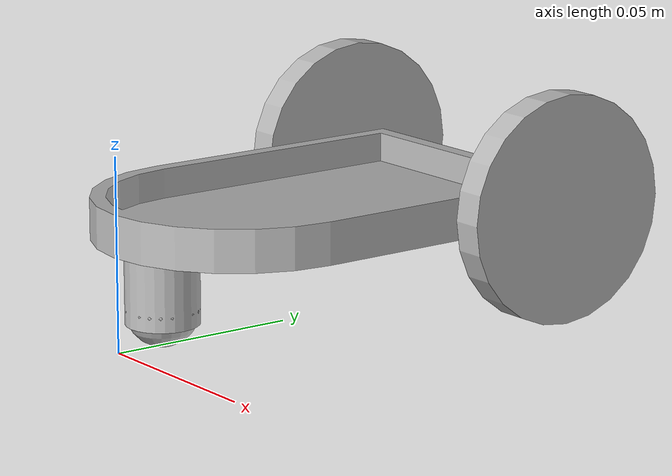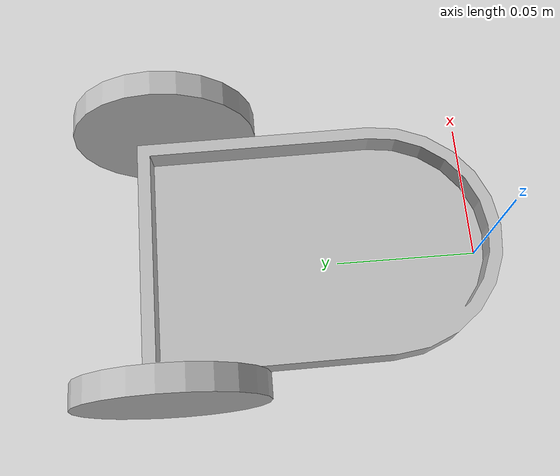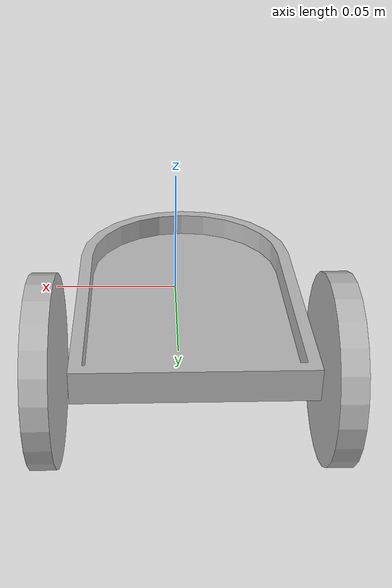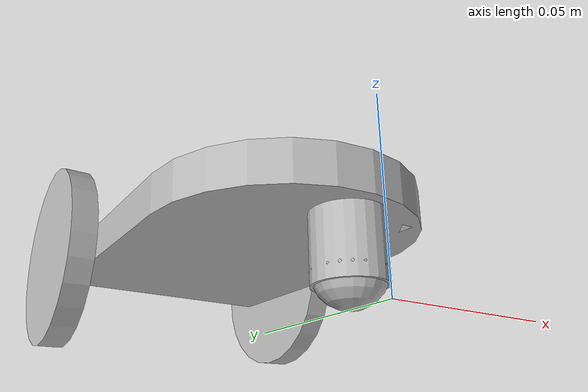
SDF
<?xml version='1.0'?>
<sdf version='1.4'>
  <model name="diff_drive_base">
    <static>false</static>
    <link name='chassis'>
    <pose>0 0 0.0243 0 0 0</pose>
           <collision name='collision'>
             <pose>-0.0025 0.05715 0.0055 0 0 1.5707</pose>
             <geometry>
               <box>
                 <size>0.1143 .0762 0.0111</size>
               </box>
             </geometry>
           </collision>

           <visual name='visual'>
              <geometry>
                <mesh>
                  <uri>model://diff_drive/meshes/diff_drive_base.dae</uri>
                </mesh>
              </geometry>
            </visual>

           <collision name='caster_ball'>
           <pose>0 0.0131 -0.015 0 0 0</pose>
             <geometry>
               <sphere>
               <radius>.009525</radius>
             </sphere>
           </geometry>

         </collision>

         <visual name='caster_ball_visual'>
         <pose>0 0.0131 -0.015 0 0 0</pose>
           <geometry>
             <sphere>
               <radius>.009525</radius>
             </sphere>
           </geometry>
         </visual>

         <collision name='caster_cyl'>
              <pose>0 0.0131 -0.0095375 0 0 0</pose>
              <geometry>
                   <cylinder>
                        <radius>0.009525</radius>
                        <length>0.0183</length>
                   </cylinder>
              </geometry>
         </collision>
         <visual name='caster_cyl_visual'>
              <pose>0 0.0131 -0.0095375 0 0 0</pose>
              <geometry>
                   <cylinder>
                        <radius>0.009525</radius>
                        <length>0.0183</length>
                   </cylinder>
              </geometry>
         </visual>

       </link>
       <link name="left_wheel">
            <!-- Offset to the left by half the width of the box + half the
            width of the wheel + depth of the edge of box. Offset up along
            z-axis by radius of wheel. Offset yaw to 90 degrees. -->
         <pose>-0.0462 0.1064 0.03 0 1.5707 0</pose>
         <collision name="collision">
           <geometry>
             <cylinder>
                  <radius>0.03</radius>
                  <length>.008</length>
             </cylinder>
           </geometry>
         </collision>
         <visual name="visual">
           <geometry>
             <cylinder>
                  <radius>0.03</radius>
                  <length>.008</length>
             </cylinder>
           </geometry>
         </visual>
       </link>

       <link name="right_wheel">
         <pose>0.0422 0.1064 0.03 0 1.5707 0</pose>
         <collision name="collision">
           <geometry>
             <cylinder>
                  <radius>0.03</radius>
                  <length>.008</length>
             </cylinder>
           </geometry>
         </collision>
         <visual name="visual">
           <geometry>
             <cylinder>
               <radius>0.03</radius>
               <length>.008</length>
             </cylinder>
           </geometry>
         </visual>
       </link>
       <joint type="revolute" name="left_wheel_hinge">
             <pose>0 0 -0.03 0 0 0</pose>
             <child>left_wheel</child>
             <parent>chassis</parent>
             <axis>
               <xyz>1 0 0</xyz>
             </axis>
           </joint>

           <joint type="revolute" name="right_wheel_hinge">
             <pose>0 0 0.03 0 0 0</pose>
             <child>right_wheel</child>
             <parent>chassis</parent>
             <axis>
               <xyz>1 0 0</xyz>
             </axis>
           </joint>
     </model>
</sdf>
